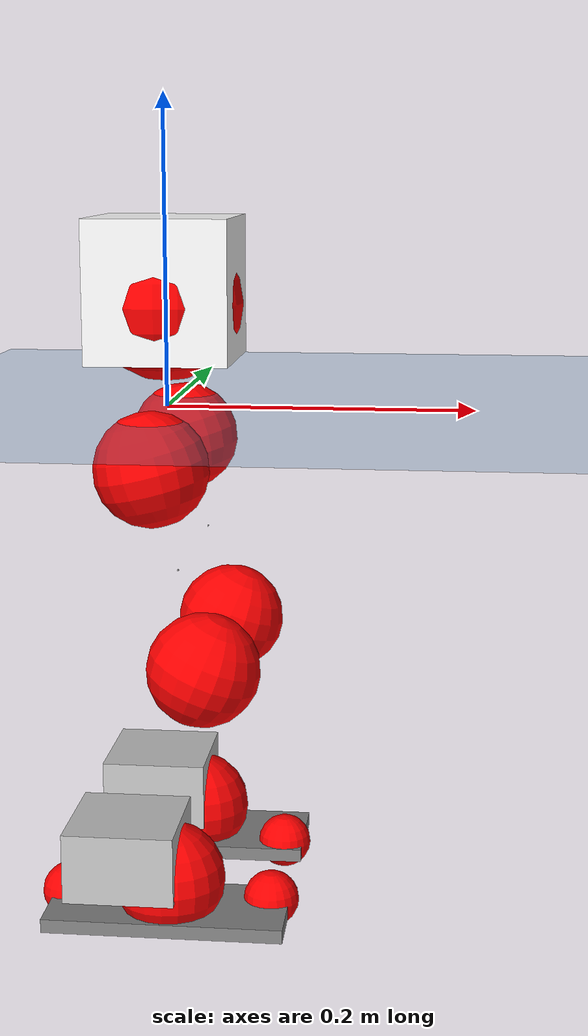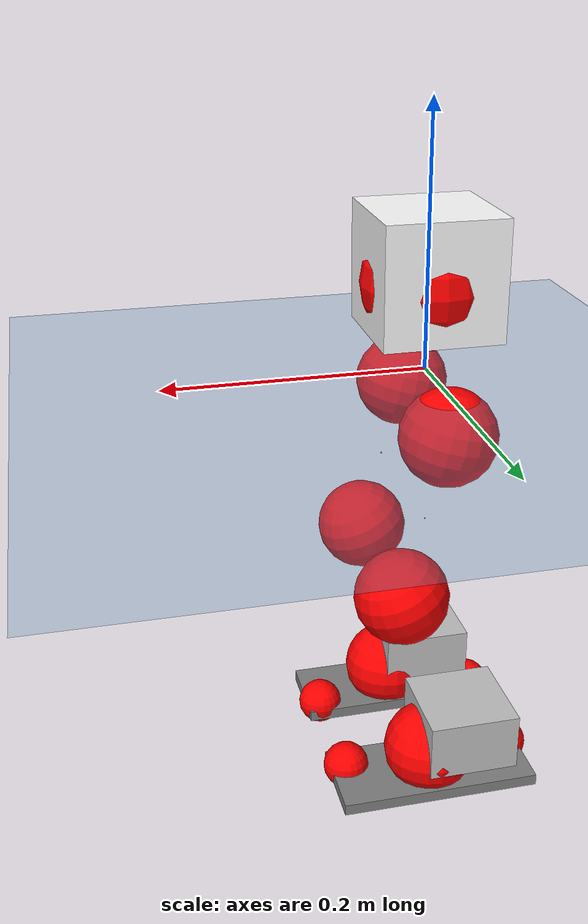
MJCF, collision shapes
<mujoco model="pi_12dof_release_v1">
  <compiler angle="radian" assetdir="assets" balanceinertia="true" inertiafromgeom="false"/>

  <option timestep="0.005" density="1.2" viscosity="2e-05"/>

  <size nkey="1"/>

  <visual>
    <quality shadowsize="8192"/>
    <map shadowclip="0.5"/>
  </visual>

  <default>
    <default class="/">
      <joint armature="0.01" damping="0.01" frictionloss="0.01"/>
      <geom contype="0" conaffinity="0" group="1" solref="-1000 -80"/>
      <site size="0.01 0.005 0.005" group="5"/>
      <general forcelimited="true" biastype="affine" gainprm="20" biasprm="0 -20 -0.5"/>
      <default class="foot">
        <geom size="0.0845 0.036 0.005" type="box" condim="6" group="4" priority="1" friction="0.9 0.2 0.2" solimp="0.015 1 0.005"/>
      </default>
      <default class="reward_collision_sphere">
        <geom group="5" rgba="1 0 0 1"/>
      </default>
    </default>
  </default>

  <asset>
    <texture type="skybox" colorspace="auto" name="//unnamed_texture_0" builtin="gradient" rgb1="0.95 0.95 0.95" rgb2="0.95 0.95 0.95" width="100" height="600"/>
    <texture type="2d" colorspace="auto" name="texplane" builtin="checker" rgb1="0.345 0.575 0.748" rgb2="0.345 0.575 0.748" markrgb="1 1 1" width="512" height="512"/>
    <material name="MatPlane" class="/" texture="texplane" texuniform="true" texrepeat="2 2" specular="0.9"/>
    <mesh name="baselink_1" class="/" file="baselink_1.STL"/>
    <mesh name="r_hip_pitch_link" class="/" file="r_hip_pitch_link.STL"/>
    <mesh name="r_hip_roll_link" class="/" file="r_hip_roll_link.STL"/>
    <mesh name="r_thigh_link" class="/" file="r_thigh_link.STL"/>
    <mesh name="r_calf_link" class="/" file="r_calf_link.STL"/>
    <mesh name="r_ankle_pitch_link" class="/" file="r_ankle_pitch_link.STL"/>
    <mesh name="r_ankle_roll_link" class="/" file="r_ankle_roll_link.STL"/>
    <mesh name="l_hip_pitch_link" class="/" file="l_hip_pitch_link.STL"/>
    <mesh name="l_hip_roll_link" class="/" file="l_hip_roll_link.STL"/>
    <mesh name="l_thigh_link" class="/" file="l_thigh_link.STL"/>
    <mesh name="l_calf_link" class="/" file="l_calf_link.STL"/>
    <mesh name="l_ankle_pitch_link" class="/" file="l_ankle_pitch_link.STL"/>
    <mesh name="l_ankle_roll_link" class="/" file="l_ankle_roll_link.STL"/>
  </asset>

  <worldbody>
    <geom name="floor" class="/" size="100 100 0.125" type="plane" group="0" material="MatPlane"/>
    <light name="toplight_shadow" class="/" pos="0 0 5" dir="0.0990148 0.0990148 -0.990148" type="directional" ambient="0.04 0.04 0.04" diffuse="0.55 0.55 0.55" specular="0.12 0.12 0.12"/>
    <light name="toplight_fill" class="/" pos="0 0 5" dir="0.0990148 0.0990148 -0.990148" type="directional" castshadow="false" ambient="0.04 0.04 0.04" diffuse="0.3 0.3 0.3" specular="0.08 0.08 0.08"/>
    <body name="trunk" pos="5.72424e-05 4.06253e-05 0.000860323" quat="1 2.09996e-05 -2.67652e-05 7.05984e-06">
      <inertial pos="0.00193839 -0.000828521 0.0376095" quat="0.69524 0.00971034 0.00962944 0.718648" mass="1.66874" diaginertia="0.00982312 0.00284986 0.00320375"/>
      <joint name="//unnamed_joint_0" type="free"/>
      <geom name="//unnamed_geom_1" class="/" type="mesh" density="0" rgba="1 1 1 1" mesh="baselink_1"/>
      <geom name="//unnamed_geom_2" class="/" size="0.0457014 0.0457014 0.0457014" pos="0 0 0.0758178" type="box" rgba="1 1 1 1"/>
      <geom name="//unnamed_geom_3" class="reward_collision_sphere" size="0.0502715" pos="0 0 0.0663405"/>
      <site name="imu" class="/" pos="0.000867523 0.00359849 0.000135138" size="0.00914028"/>
      <camera name="track" class="/" pos="0 -1.58788 0" quat="0.707107 0.707107 0 0" mode="trackcom"/>
      <camera name="ego_camera" class="/" pos="0.0750317 0 0.17059" quat="-0.5 -0.5 0.5 0.5"/>
      <body name="r_hip_pitch_link" pos="-0.000321306 -0.0169198 -0.0308137" quat="0.992217 0.000116234 -0.124519 0.000118835">
        <inertial pos="0.00155699 -0.0445658 0.00055098" quat="-0.0188925 0.706219 -0.0285616 0.707165" mass="0.279479" diaginertia="0.000108161 3.10341e-05 6.25828e-05"/>
        <joint name="r_hip_pitch_joint" class="/" pos="0 0 0" axis="0.00608452 -0.999981 -0.0010212" range="-1.74631 1.26787" armature="0.00949453" damping="0.0158947" frictionloss="0.00950229"/>
        <geom name="//unnamed_geom_4" class="/" type="mesh" density="0" rgba="0.75294 0.75294 0.75294 1" mesh="r_hip_pitch_link"/>
        <geom name="//unnamed_geom_5" class="/" size="0.000457014 0.000457014 0.000457014" type="box" rgba="0.75294 0.75294 0.75294 1"/>
        <body name="r_hip_roll_link" pos="-0.000167815 -0.0438463 -0.000552994" quat="1 5.32839e-06 -1.80147e-05 -3.1942e-05">
          <inertial pos="-0.00128433 0.00019746 -0.0574363" quat="0.706194 -0.0791535 -0.0823983 0.698739" mass="0.299471" diaginertia="0.000336193 8.72384e-05 9.80312e-05"/>
          <joint name="r_hip_roll_joint" class="/" pos="0 0 0" axis="-0.999994 -0.00303296 0.00151578" stiffness="0.000781366" range="-0.122045 0.502442" armature="0.00904176" damping="0.00247099" frictionloss="0.00878953"/>
          <geom name="//unnamed_geom_6" class="/" type="mesh" density="0" rgba="0.75294 0.75294 0.75294 1" mesh="r_hip_roll_link"/>
          <geom name="//unnamed_geom_7" class="/" size="0.000457014 0.000457014 0.000457014" type="box" rgba="0.75294 0.75294 0.75294 1"/>
          <geom name="//unnamed_geom_8" class="reward_collision_sphere" size="0.0365611"/>
          <body name="r_thigh_link" pos="-0.000319432 -3.90756e-05 -0.0657975" quat="1 2.88177e-05 3.76359e-05 4.45084e-05">
            <inertial pos="0.000297877 0.000702348 -0.0452271" quat="0.737145 0.675735 0.000159057 -0.000232405" mass="0.0868518" diaginertia="0.000125278 2.99998e-05 4.4568e-05"/>
            <joint name="r_thigh_joint" class="/" pos="0 0 0" axis="-0.000497676 0.000334171 -1" range="-0.300567 0.609594" armature="0.0088788" damping="0.00252708" frictionloss="0.00922669"/>
            <geom name="//unnamed_geom_9" class="/" type="mesh" density="0" rgba="0.75294 0.75294 0.75294 1" mesh="r_thigh_link"/>
            <geom name="//unnamed_geom_10" class="/" size="0.000457014 0.000457014 0.000457014" type="box" rgba="0.75294 0.75294 0.75294 1"/>
            <body name="r_calf_link" pos="-0.000712897 -0.00124043 -0.0663306" quat="0.947658 0.000123159 0.319286 0.000232215">
              <inertial pos="-0.0001796 -0.000185395 -0.0666582" quat="0.999985 -0.00272121 -0.000152671 0.00472838" mass="0.625927" diaginertia="0.00355173 0.00111459 0.000133517"/>
              <joint name="r_calf_joint" class="/" pos="0 0 0" axis="0.000366017 -1 -0.000840427" range="-1.64579 0.649457" armature="0.00919132" damping="0.00765386" frictionloss="0.00894886"/>
              <geom name="//unnamed_geom_11" class="/" type="mesh" density="0" rgba="0.75294 0.75294 0.75294 1" mesh="r_calf_link"/>
              <geom name="//unnamed_geom_12" class="/" size="0.000457014 0.000457014 0.000457014" type="box" rgba="0.75294 0.75294 0.75294 1"/>
              <geom name="//unnamed_geom_13" class="reward_collision_sphere" size="0.0365611"/>
              <body name="r_ankle_pitch_link" pos="0.00109713 -0.000289677 -0.133202" quat="0.980068 -4.00097e-05 -0.198661 -6.8218e-05">
                <inertial pos="0.00474482 0.00265496 -0.000260534" quat="0.00176406 0.706828 -0.00262169 0.707378" mass="0.136197" diaginertia="0.000310652 7.06865e-05 9.26829e-05"/>
                <joint name="r_ankle_pitch_joint" class="/" pos="0 0 0" axis="0.000269931 -0.999997 -0.00242762" stiffness="0.000531211" range="-1.28105 0.493697" armature="0.00919772" damping="0.00792597" frictionloss="0.00891751"/>
                <geom name="//unnamed_geom_14" class="/" type="mesh" density="0" rgba="0.75294 0.75294 0.75294 1" mesh="r_ankle_pitch_link"/>
                <geom name="//unnamed_geom_15" class="/" size="0.0356471 0.0365611 0.0228507" type="box" rgba="0.75294 0.75294 0.75294 1"/>
                <body name="r_ankle_roll_link" pos="0.0769585 0.00279548 -0.000838005" quat="1 6.66164e-05 -2.738e-05 1.86651e-05">
                  <inertial pos="-0.023809 -0.000340821 -0.0134995" quat="0.560918 0.431499 0.433995 0.55752" mass="0.391594" diaginertia="0.00112048 0.000324151 0.000215739"/>
                  <joint name="r_ankle_roll_joint" class="/" pos="0 0 0" axis="-0.999999 -0.000596506 -0.00108793" range="-0.154249 0.147407" armature="0.00913325" damping="0.00585944" frictionloss="0.0093773"/>
                  <geom name="//unnamed_geom_16" class="/" type="mesh" density="0" rgba="0.75294 0.75294 0.75294 1" mesh="r_ankle_roll_link"/>
                  <geom name="//unnamed_geom_17" class="/" type="mesh" rgba="0.75294 0.75294 0.75294 1" mesh="r_ankle_roll_link"/>
                  <geom name="right_foot" class="foot" size="0.0780849 0.0325615 0.00450764" pos="-0.0510215 0 -0.0416998"/>
                  <geom name="//unnamed_geom_19" class="reward_collision_sphere" size="0.0365611" pos="-0.0500211 0 -0.0189544"/>
                  <geom name="//unnamed_geom_20" class="reward_collision_sphere" size="0.0182806" pos="0.0150063 0.0158788 -0.0379089"/>
                  <geom name="//unnamed_geom_21" class="reward_collision_sphere" size="0.0182806" pos="-0.120051 0.0158788 -0.0379089"/>
                  <site name="right_foot" class="foot" pos="-0.0510215 0 -0.0416998" size="0.00914028"/>
                </body>
              </body>
            </body>
          </body>
        </body>
      </body>
      <body name="l_hip_pitch_link" pos="0.000189453 0.0177342 -0.030803" quat="0.992209 2.03821e-05 -0.124586 -0.000129228">
        <inertial pos="0.00134233 0.0430857 0.000402672" quat="-0.0424791 0.705317 0.0312265 0.706928" mass="0.294787" diaginertia="0.000128921 3.27863e-05 7.73049e-05"/>
        <joint name="l_hip_pitch_joint" class="/" pos="0 0 0" axis="-0.000247507 1 6.46194e-05" range="-1.26001 1.75566" armature="0.00878155" damping="0.00899525" frictionloss="0.00938974"/>
        <geom name="//unnamed_geom_22" class="/" type="mesh" density="0" rgba="0.75294 0.75294 0.75294 1" mesh="l_hip_pitch_link"/>
        <geom name="//unnamed_geom_23" class="/" size="0.000457014 0.000457014 0.000457014" type="box" rgba="0.75294 0.75294 0.75294 1"/>
        <body name="l_hip_roll_link" pos="0.000777827 0.0446916 3.75152e-05" quat="1 0.000116625 0.0001319 5.69067e-05">
          <inertial pos="-0.00164209 0.000763265 -0.0581508" quat="0.699365 -0.0753052 -0.0781362 0.706479" mass="0.299043" diaginertia="0.000332604 8.83703e-05 9.76091e-05"/>
          <joint name="l_hip_roll_joint" class="/" pos="0 0 0" axis="-0.999999 0.000394762 -0.00165483" range="-0.487878 0.114354" armature="0.00933662" damping="0.00479664" frictionloss="0.00902597"/>
          <geom name="//unnamed_geom_24" class="/" type="mesh" density="0" rgba="0.75294 0.75294 0.75294 1" mesh="l_hip_roll_link"/>
          <geom name="//unnamed_geom_25" class="/" size="0.000457014 0.000457014 0.000457014" type="box" rgba="0.75294 0.75294 0.75294 1"/>
          <geom name="//unnamed_geom_26" class="reward_collision_sphere" size="0.0365611"/>
          <body name="l_thigh_link" pos="-0.000702477 -0.000300879 -0.0656274" quat="1 -0.00023387 6.13886e-06 9.95741e-05">
            <inertial pos="-0.000159776 -0.00167759 -0.0444659" quat="0.675423 0.737431 0.000158547 7.88241e-05" mass="0.0873069" diaginertia="0.000126053 3.01284e-05 4.52128e-05"/>
            <joint name="l_thigh_joint" class="/" pos="0 0 0" axis="-0.00136402 -0.00140116 -0.999998" range="-0.591664 0.305896" armature="0.00914727" damping="0" frictionloss="0.00953229"/>
            <geom name="//unnamed_geom_27" class="/" type="mesh" density="0" rgba="0.75294 0.75294 0.75294 1" mesh="l_thigh_link"/>
            <geom name="//unnamed_geom_28" class="/" size="0.000457014 0.000457014 0.000457014" type="box" rgba="0.75294 0.75294 0.75294 1"/>
            <body name="l_calf_link" pos="-0.000483027 -0.00050684 -0.0668267" quat="0.947687 0.000144913 0.319201 -7.27935e-05">
              <inertial pos="0.000451386 0.00188565 -0.0658559" quat="0.99999 0.00284821 0.00221225 0.00280681" mass="0.624632" diaginertia="0.00352916 0.00112364 0.000134953"/>
              <joint name="l_calf_joint" class="/" pos="0 0 0" axis="-0.000749775 0.999999 -0.000711073" range="-0.640327 1.66262" armature="0.00907799" damping="0.00937831" frictionloss="0.00953972"/>
              <geom name="//unnamed_geom_29" class="/" type="mesh" density="0" rgba="0.75294 0.75294 0.75294 1" mesh="l_calf_link"/>
              <geom name="//unnamed_geom_30" class="/" size="0.000457014 0.000457014 0.000457014" type="box" rgba="0.75294 0.75294 0.75294 1"/>
              <geom name="//unnamed_geom_31" class="reward_collision_sphere" size="0.0365611"/>
              <body name="l_ankle_pitch_link" pos="0.000601505 0.00157081 -0.133541" quat="0.980063 4.13386e-05 -0.198685 5.71668e-05">
                <inertial pos="0.00480799 -1.75379e-05 -0.000761163" quat="-0.00568669 0.707046 0.00147838 0.707143" mass="0.133194" diaginertia="0.000306522 6.9197e-05 9.11038e-05"/>
                <joint name="l_ankle_pitch_joint" class="/" pos="0 0 0" axis="-2.58925e-05 1 0.000476068" range="-0.507837 1.30627" armature="0.00923408" damping="0.00410449" frictionloss="0.00891836"/>
                <geom name="//unnamed_geom_32" class="/" type="mesh" density="0" rgba="0.75294 0.75294 0.75294 1" mesh="l_ankle_pitch_link"/>
                <geom name="//unnamed_geom_33" class="/" size="0.0356471 0.0365611 0.0228507" type="box" rgba="0.75294 0.75294 0.75294 1"/>
                <body name="l_ankle_roll_link" pos="0.0757826 0.000817923 0.000250585" quat="1 -0.000241451 -0.000264922 -2.70538e-05">
                  <inertial pos="-0.0242981 -0.000189905 -0.0137343" quat="0.55974 0.4308 0.433201 0.559857" mass="0.399722" diaginertia="0.00114747 0.000326226 0.000220102"/>
                  <joint name="l_ankle_roll_joint" class="/" pos="0 0 0" axis="-0.999992 0.0028548 -0.00291014" stiffness="0.000891823" range="-0.15059 0.136639" armature="0.0092293" damping="0.00773732" frictionloss="0.00885079"/>
                  <geom name="//unnamed_geom_34" class="/" type="mesh" density="0" rgba="0.75294 0.75294 0.75294 1" mesh="l_ankle_roll_link"/>
                  <geom name="//unnamed_geom_35" class="/" type="mesh" rgba="0.75294 0.75294 0.75294 1" mesh="l_ankle_roll_link"/>
                  <geom name="left_foot" class="foot" size="0.0790668 0.0342547 0.00450905" pos="-0.0510215 0 -0.0416998"/>
                  <geom name="//unnamed_geom_37" class="reward_collision_sphere" size="0.0365611" pos="-0.0500211 0 -0.0189544"/>
                  <geom name="//unnamed_geom_38" class="reward_collision_sphere" size="0.0182806" pos="0.0150063 -0.0158788 -0.0379089"/>
                  <geom name="//unnamed_geom_39" class="reward_collision_sphere" size="0.0182806" pos="-0.120051 -0.0158788 -0.0379089"/>
                  <site name="left_foot" class="foot" pos="-0.0510215 0 -0.0416998" size="0.00914028"/>
                </body>
              </body>
            </body>
          </body>
        </body>
      </body>
    </body>
  </worldbody>

  <contact>
    <pair class="/" geom1="floor" geom2="right_foot" name="//unnamed_contact_1"/>
    <pair class="/" geom1="floor" geom2="left_foot" name="//unnamed_contact_0"/>
  </contact>

  <actuator>
    <general name="r_hip_pitch_joint" class="/" joint="r_hip_pitch_joint" forcerange="-19.8359 19.8359" gainprm="18.3891" biasprm="0 -18.3891 -0.459295"/>
    <general name="r_hip_roll_joint" class="/" joint="r_hip_roll_joint" forcerange="-19.2516 19.2516" gainprm="18.3891" biasprm="0 -18.3891 -0.459295"/>
    <general name="r_thigh_joint" class="/" joint="r_thigh_joint" forcerange="-19.8262 19.8262" gainprm="18.3891" biasprm="0 -18.3891 -0.459295"/>
    <general name="r_calf_joint" class="/" joint="r_calf_joint" forcerange="-19.3432 19.3432" gainprm="18.3891" biasprm="0 -18.3891 -0.459295"/>
    <general name="r_ankle_pitch_joint" class="/" joint="r_ankle_pitch_joint" forcerange="-18.5385 18.5385" gainprm="18.3891" biasprm="0 -18.3891 -0.459295"/>
    <general name="r_ankle_roll_joint" class="/" joint="r_ankle_roll_joint" forcerange="-19.0434 19.0434" gainprm="18.3891" biasprm="0 -18.3891 -0.459295"/>
    <general name="l_hip_pitch_joint" class="/" joint="l_hip_pitch_joint" forcerange="-19.7252 19.7252" gainprm="18.3891" biasprm="0 -18.3891 -0.459295"/>
    <general name="l_hip_roll_joint" class="/" joint="l_hip_roll_joint" forcerange="-18.7918 18.7918" gainprm="18.3891" biasprm="0 -18.3891 -0.459295"/>
    <general name="l_thigh_joint" class="/" joint="l_thigh_joint" forcerange="-19.5287 19.5287" gainprm="18.3891" biasprm="0 -18.3891 -0.459295"/>
    <general name="l_calf_joint" class="/" joint="l_calf_joint" forcerange="-18.9119 18.9119" gainprm="18.3891" biasprm="0 -18.3891 -0.459295"/>
    <general name="l_ankle_pitch_joint" class="/" joint="l_ankle_pitch_joint" forcerange="-19.3378 19.3378" gainprm="18.3891" biasprm="0 -18.3891 -0.459295"/>
    <general name="l_ankle_roll_joint" class="/" joint="l_ankle_roll_joint" forcerange="-19.5053 19.5053" gainprm="18.3891" biasprm="0 -18.3891 -0.459295"/>
  </actuator>

  <sensor>
    <gyro site="imu" name="imu_angular_velocity"/>
    <velocimeter site="imu" name="imu_linear_velocity"/>
    <framelinvel objtype="site" objname="left_foot" name="left_foot_global_linear_velocity"/>
    <framelinvel objtype="site" objname="right_foot" name="right_foot_global_linear_velocity"/>
  </sensor>

  <keyframe>
    <key name="home" qpos="0 0 0.291 1 0 0 0 0.4 0 0 -0.8 0.4 0 -0.4 0 0 0.8 -0.4 0"/>
  </keyframe>
</mujoco>
